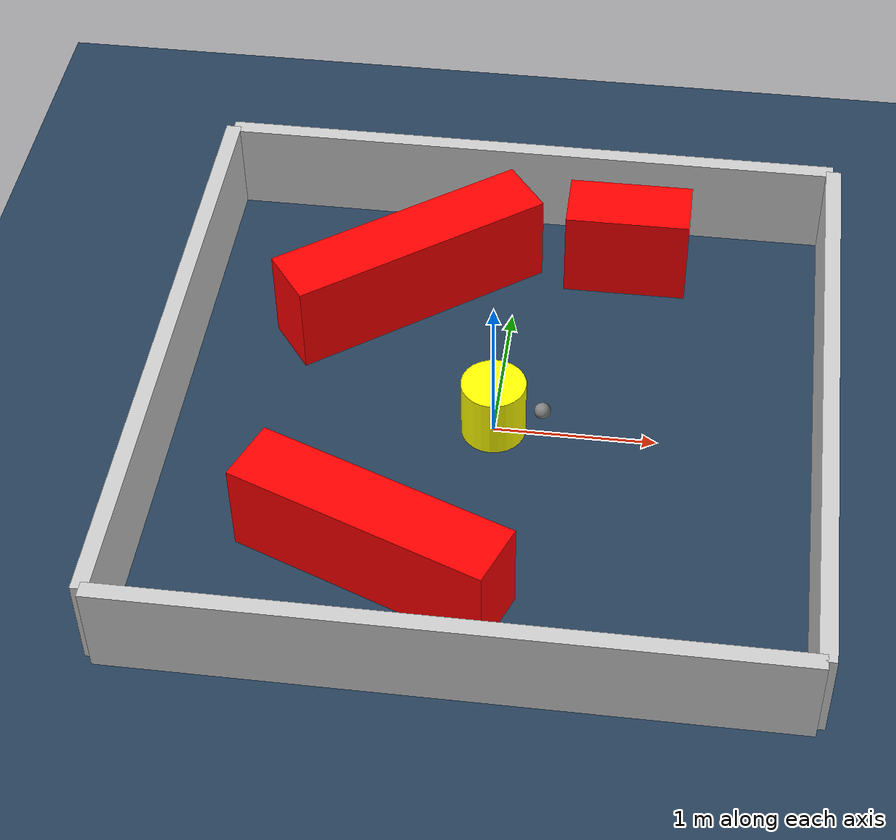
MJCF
<?xml version="1.0" ?>
<mujoco model="generated_environment">
  <option timestep="0.01" integrator="RK4" cone="elliptic"/>
  <default>
    <geom density="1"/>
  </default>
  <asset>
    <texture builtin="gradient" height="3072" rgb1="0.3 0.5 0.7" rgb2="0 0 0" type="skybox" width="512"/>
    <texture builtin="checker" height="300" mark="edge" markrgb="0.8 0.8 0.8" name="groundplane" rgb1="0.2 0.3 0.4" rgb2="0.1 0.2 0.3" type="2d" width="300"/>
    <material name="groundplane" reflectance="0.2" texrepeat="5 5" texture="groundplane" texuniform="true"/>
    <material name="robot" rgba="0.0 1.0 0.0 1"/>
  </asset>
  <worldbody>
    <light dir="0 0 -1" directional="true" pos="0 0 1.5"/>
    <geom condim="4" friction="1.0 0.005 0.001" material="groundplane" name="floor" size="0 0 0.05" type="plane"/>
    <body name="walls">
      <geom name="wall_1" condim="4" pos="-2.0 0.0 0.3" rgba="0.800000011920929 0.800000011920929 0.800000011920929 1.0" size="0.05 2.0 0.3" type="box"/>
      <geom name="wall_2" condim="4" pos="2.0 0.0 0.3" rgba="0.800000011920929 0.800000011920929 0.800000011920929 1.0" size="0.05 2.0 0.3" type="box"/>
      <geom name="wall_3" condim="4" pos="0.0 -2.0 0.3" rgba="0.800000011920929 0.800000011920929 0.800000011920929 1.0" size="2.0 0.05 0.3" type="box"/>
      <geom name="wall_4" condim="4" pos="0.0 2.0 0.3" rgba="0.800000011920929 0.800000011920929 0.800000011920929 1.0" size="2.0 0.05 0.3" type="box"/>
    </body>
    <body name="robot">
      <joint name="joint_x" type="slide" pos="0 0 0" axis="1 0 0"/>
      <joint name="joint_y" type="slide" pos="0 0 0" axis="0 1 0"/>
      <geom name="robot" type="sphere" pos="0.3 0.0 0.2" size="0.05" mass="5." friction="1.0 0.005 0.0001" condim="4" rgba="0.5 0.5 0.5 1.0"/>
      <site name="sensor_ball"/>
    </body>
    <body name="obstacle_movable_1">
      <geom name="obstacle_movable_1" condim="4" pos="0.0 0.0 0.2" euler="0 0 0.0" friction="1.0 0.005 0.001" rgba="1.0 1.0 0.0 1.0" size="0.2 0.2 0.0" type="cylinder" mass="0.1"/>
      <joint type="free"/>
    </body>
    <body name="obstacle_2_static">
      <geom name="obstacle_2_static" condim="4" pos="-0.6724294881707419 1.089939334932575 0.3" euler="0 0 37.0307757797045" friction="1.0 0.005 0.001" rgba="1 0 0 1" size="0.8746217378709915 0.2 0.3" type="box"/>
    </body>
    <body name="obstacle_3_static">
      <geom name="obstacle_3_static" condim="4" pos="0.6989214778630304 1.5174794506404135 0.3" euler="0 0 180.1803208799983" friction="1.0 0.005 0.001" rgba="1 0 0 1" size="0.3954173716040609 0.2 0.3" type="box"/>
    </body>
    <body name="obstacle_4_static">
      <geom name="obstacle_4_static" condim="4" pos="-0.5541128506441811 -1.1966267274866604 0.3" euler="0 0 338.5323522241332" friction="1.0 0.005 0.001" rgba="1 0 0 1" size="0.8214218226964383 0.2 0.3" type="box"/>
    </body>
  </worldbody>
  <actuator>
    <motor name="actuator_x" joint="joint_x" gear="1" ctrlrange="-1 1"/>
    <motor name="actuator_y" joint="joint_y" gear="1" ctrlrange="-1 1"/>
  </actuator>
</mujoco>
